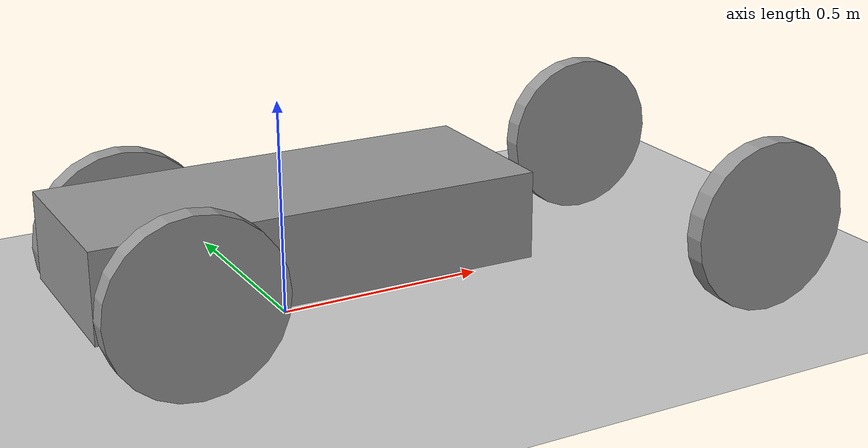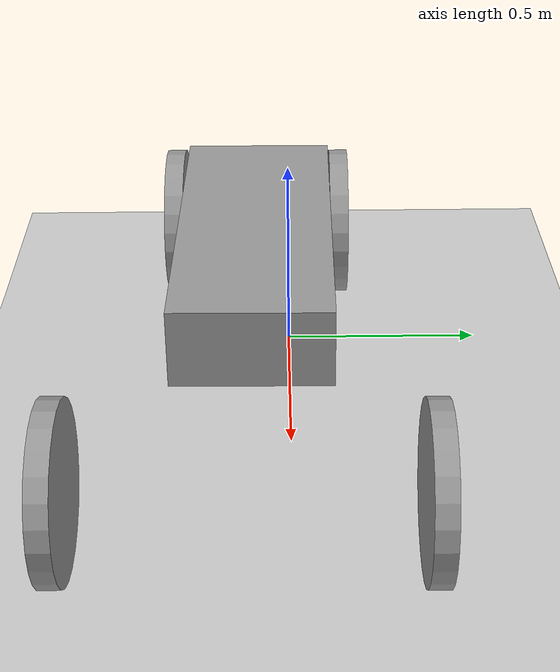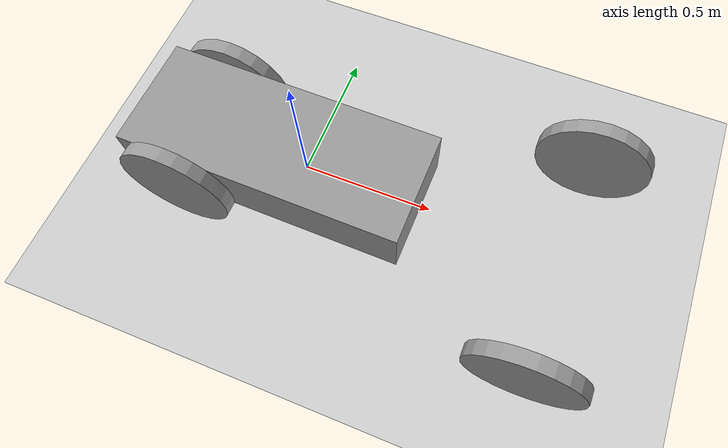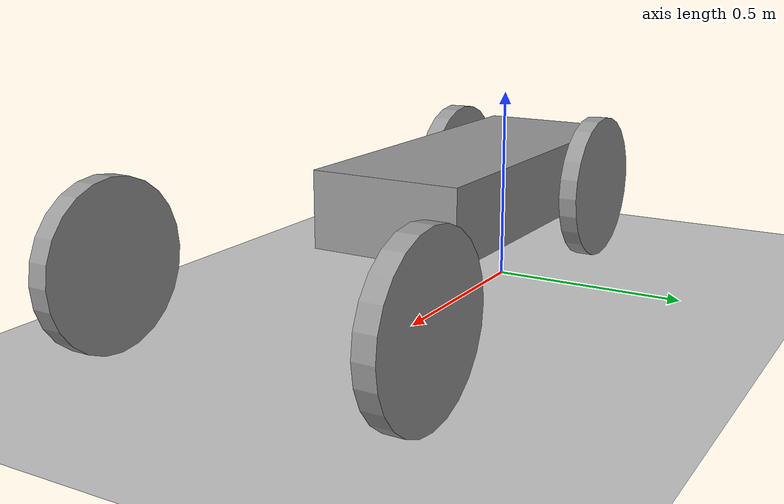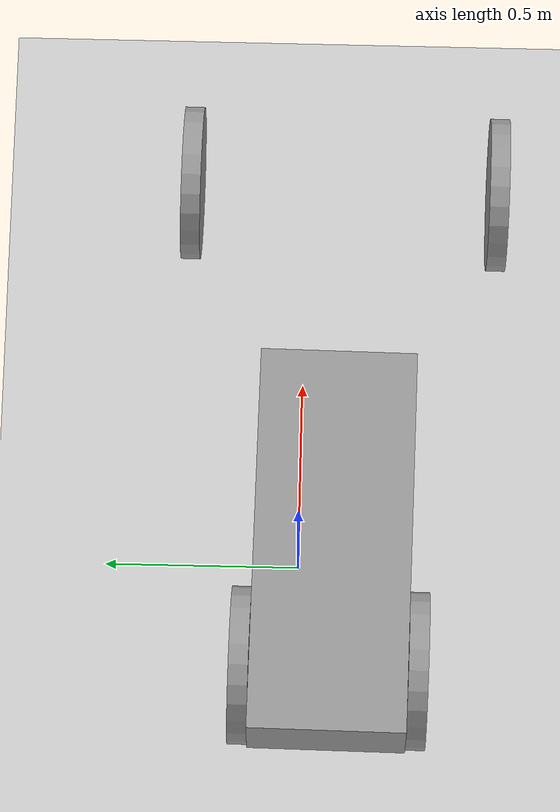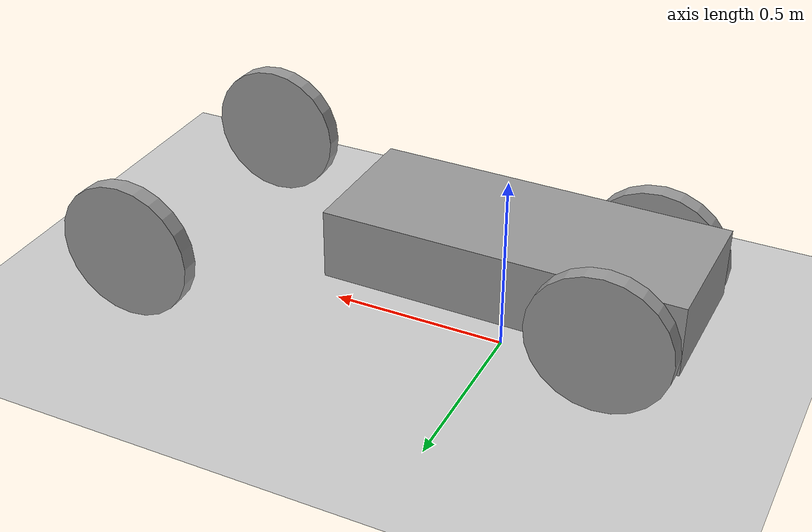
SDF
<sdf version="1.6">
 <world name="default">
  <light name="sun" type="directional">
   <pose>0 0 10 0 -0 0</pose>
   <diffuse>0.8 0.8 0.8 1</diffuse>
   <specular>0.2 0.2 0.2 1</specular>
   <attenuation>
    <range>1000</range>
    <constant>0.9</constant>
    <linear>0.01</linear>
    <quadratic>0.001</quadratic>
   </attenuation>
   <direction>-0.5 0.1 -0.9</direction>
  </light>
  <model name="ground_plane">
   <static>1</static>
   <link name="link">
    <collision name="collision">
     <geometry><plane><normal>0 0 1</normal><size>100 100</size></plane></geometry>
     <surface>
      <contact><collide_bitmask>65535</collide_bitmask></contact>
      <friction><ode><mu>100</mu><mu2>50</mu2></ode></friction>
     </surface>
    </collision>
    <visual name="visual">
     <cast_shadows>0</cast_shadows>
     <geometry><plane><normal>0 0 1</normal><size>100 100</size></plane></geometry>
     <material>
      <script><uri>file://media/materials/scripts/gazebo.material</uri><name>Gazebo/Grey</name></script>
     </material>
    </visual>
   </link>
  </model>
  <gravity>0 0 -9.8</gravity>
  <magnetic_field>6e-06 2.3e-05 -4.2e-05</magnetic_field>
  <atmosphere type="adiabatic"/>
  <physics name="default_physics" default="0" type="ode">
   <max_step_size>0.001</max_step_size>
   <real_time_factor>1</real_time_factor>
   <real_time_update_rate>1000</real_time_update_rate>
  </physics>
  <scene><ambient>0.4 0.4 0.4 1</ambient><background>0.7 0.7 0.7 1</background><shadows>1</shadows></scene>
  <spherical_coordinates>
   <surface_model>EARTH_WGS84</surface_model>
   <latitude_deg>0</latitude_deg>
   <longitude_deg>0</longitude_deg>
   <elevation>0</elevation>
   <heading_deg>0</heading_deg>
  </spherical_coordinates>
  <model name="steer_car">
   <link name="link_0">
    <inertial>
     <mass>0.08</mass>
     <inertia>
      <ixx>0.00133333</ixx>
      <ixy>0</ixy>
      <ixz>0</ixz>
      <iyy>0.00693333</iyy>
      <iyz>0</iyz>
      <izz>0.00773333</izz>
     </inertia>
    </inertial>
    <pose>-0.133642 0.000148 0.304594 0 -0 0</pose>
    <visual name="visual">
     <geometry><box><size>1 0.4 0.2</size></box></geometry>
     <material>
      <lighting>1</lighting>
      <script><uri>file://media/materials/scripts/gazebo.material</uri><name>Gazebo/Grey</name></script>
      <shader type="pixel"><normal_map>__default__</normal_map></shader>
      <ambient>0.3 0.3 0.3 1</ambient>
      <diffuse>0.7 0.7 0.7 1</diffuse>
      <specular>0.01 0.01 0.01 1</specular>
      <emissive>0 0 0 1</emissive>
     </material>
    </visual>
    <collision name="collision">
     <geometry><box><size>1 0.4 0.2</size></box></geometry>
     <surface>
      <friction>
       <ode><mu>1</mu><mu2>1</mu2><fdir1>0 0 0</fdir1><slip1>0</slip1><slip2>0</slip2></ode>
       <torsional>
        <coefficient>1</coefficient>
        <patch_radius>0</patch_radius>
        <surface_radius>0</surface_radius>
        <use_patch_radius>1</use_patch_radius>
        <ode><slip>0</slip></ode>
       </torsional>
      </friction>
      <bounce><restitution_coefficient>0</restitution_coefficient><threshold>1e+06</threshold></bounce>
      <contact>
       <collide_without_contact>0</collide_without_contact>
       <collide_without_contact_bitmask>1</collide_without_contact_bitmask>
       <collide_bitmask>1</collide_bitmask>
       <ode>
        <soft_cfm>0</soft_cfm>
        <soft_erp>0.2</soft_erp>
        <kp>1e+13</kp>
        <kd>1</kd>
        <max_vel>0.01</max_vel>
        <min_depth>0</min_depth>
       </ode>
       <bullet>
        <split_impulse>1</split_impulse>
        <split_impulse_penetration_threshold>-0.01</split_impulse_penetration_threshold>
        <soft_cfm>0</soft_cfm>
        <soft_erp>0.2</soft_erp>
        <kp>1e+13</kp>
        <kd>1</kd>
       </bullet>
      </contact>
     </surface>
    </collision>
   </link>
   <link name="link_1">
    <inertial>
     <mass>1.6e-05</mass>
     <inertia><ixx>0</ixx><ixy>0</ixy><ixz>0</ixz><iyy>0</iyy><iyz>0</iyz><izz>0</izz></inertia>
    </inertial>
    <pose>0.866358 -0.399852 0.254594 0 -0 0</pose>
    <visual name="visual">
     <geometry><cylinder><radius>0.02</radius><length>0.01</length></cylinder></geometry>
     <material>
      <lighting>1</lighting>
      <script><uri>file://media/materials/scripts/gazebo.material</uri><name>Gazebo/Grey</name></script>
      <shader type="pixel"><normal_map>__default__</normal_map></shader>
      <ambient>0.3 0.3 0.3 1</ambient>
      <diffuse>0.7 0.7 0.7 1</diffuse>
      <specular>0.01 0.01 0.01 1</specular>
      <emissive>0 0 0 1</emissive>
     </material>
    </visual>
    <collision name="collision">
     <geometry><cylinder><radius>0.02</radius><length>0.01</length></cylinder></geometry>
     <surface>
      <friction>
       <ode><mu>1</mu><mu2>1</mu2><fdir1>0 0 0</fdir1><slip1>0</slip1><slip2>0</slip2></ode>
       <torsional>
        <coefficient>1</coefficient>
        <patch_radius>0</patch_radius>
        <surface_radius>0</surface_radius>
        <use_patch_radius>1</use_patch_radius>
        <ode><slip>0</slip></ode>
       </torsional>
      </friction>
      <bounce><restitution_coefficient>0</restitution_coefficient><threshold>1e+06</threshold></bounce>
      <contact>
       <collide_without_contact>0</collide_without_contact>
       <collide_without_contact_bitmask>1</collide_without_contact_bitmask>
       <collide_bitmask>1</collide_bitmask>
       <ode>
        <soft_cfm>0</soft_cfm>
        <soft_erp>0.2</soft_erp>
        <kp>1e+13</kp>
        <kd>1</kd>
        <max_vel>0.01</max_vel>
        <min_depth>0</min_depth>
       </ode>
       <bullet>
        <split_impulse>1</split_impulse>
        <split_impulse_penetration_threshold>-0.01</split_impulse_penetration_threshold>
        <soft_cfm>0</soft_cfm>
        <soft_erp>0.2</soft_erp>
        <kp>1e+13</kp>
        <kd>1</kd>
       </bullet>
      </contact>
     </surface>
    </collision>
   </link>
   <link name="link_1_clone">
    <inertial>
     <mass>1.6e-05</mass>
     <inertia><ixx>0</ixx><ixy>0</ixy><ixz>0</ixz><iyy>0</iyy><iyz>0</iyz><izz>0</izz></inertia>
    </inertial>
    <pose>0.866358 0.400148 0.254594 0 -0 0</pose>
    <visual name="visual">
     <geometry><cylinder><radius>0.02</radius><length>0.01</length></cylinder></geometry>
     <material>
      <lighting>1</lighting>
      <script><uri>file://media/materials/scripts/gazebo.material</uri><name>Gazebo/Grey</name></script>
      <shader type="pixel"><normal_map>__default__</normal_map></shader>
      <ambient>0.3 0.3 0.3 1</ambient>
      <diffuse>0.7 0.7 0.7 1</diffuse>
      <specular>0.01 0.01 0.01 1</specular>
      <emissive>0 0 0 1</emissive>
     </material>
    </visual>
    <collision name="collision">
     <geometry><cylinder><radius>0.02</radius><length>0.01</length></cylinder></geometry>
     <surface>
      <friction>
       <ode><mu>1</mu><mu2>1</mu2><fdir1>0 0 0</fdir1><slip1>0</slip1><slip2>0</slip2></ode>
       <torsional>
        <coefficient>1</coefficient>
        <patch_radius>0</patch_radius>
        <surface_radius>0</surface_radius>
        <use_patch_radius>1</use_patch_radius>
        <ode><slip>0</slip></ode>
       </torsional>
      </friction>
      <bounce><restitution_coefficient>0</restitution_coefficient><threshold>1e+06</threshold></bounce>
      <contact>
       <collide_without_contact>0</collide_without_contact>
       <collide_without_contact_bitmask>1</collide_without_contact_bitmask>
       <collide_bitmask>1</collide_bitmask>
       <ode>
        <soft_cfm>0</soft_cfm>
        <soft_erp>0.2</soft_erp>
        <kp>1e+13</kp>
        <kd>1</kd>
        <max_vel>0.01</max_vel>
        <min_depth>0</min_depth>
       </ode>
       <bullet>
        <split_impulse>1</split_impulse>
        <split_impulse_penetration_threshold>-0.01</split_impulse_penetration_threshold>
        <soft_cfm>0</soft_cfm>
        <soft_erp>0.2</soft_erp>
        <kp>1e+13</kp>
        <kd>1</kd>
       </bullet>
      </contact>
     </surface>
    </collision>
   </link>
   <link name="link_2">
    <inertial>
     <mass>0.2</mass>
     <inertia>
      <ixx>0.00204167</ixx>
      <ixy>0</ixy>
      <ixz>0</ixz>
      <iyy>0.00204167</iyy>
      <iyz>0</iyz>
      <izz>0.004</izz>
     </inertia>
    </inertial>
    <pose>0.864364 -0.39886 0.259777 1.5708 -0 0</pose>
    <visual name="visual">
     <geometry><cylinder><radius>0.2</radius><length>0.05</length></cylinder></geometry>
     <material>
      <lighting>1</lighting>
      <script><uri>file://media/materials/scripts/gazebo.material</uri><name>Gazebo/Grey</name></script>
      <shader type="pixel"><normal_map>__default__</normal_map></shader>
      <ambient>0.3 0.3 0.3 1</ambient>
      <diffuse>0.7 0.7 0.7 1</diffuse>
      <specular>0.01 0.01 0.01 1</specular>
      <emissive>0 0 0 1</emissive>
     </material>
    </visual>
    <collision name="collision">
     <geometry><cylinder><radius>0.2</radius><length>0.05</length></cylinder></geometry>
     <surface>
      <friction>
       <ode><mu>1</mu><mu2>1</mu2><fdir1>0 0 0</fdir1><slip1>0</slip1><slip2>0</slip2></ode>
       <torsional>
        <coefficient>1</coefficient>
        <patch_radius>0</patch_radius>
        <surface_radius>0</surface_radius>
        <use_patch_radius>1</use_patch_radius>
        <ode><slip>0</slip></ode>
       </torsional>
      </friction>
      <bounce><restitution_coefficient>0</restitution_coefficient><threshold>1e+06</threshold></bounce>
      <contact>
       <collide_without_contact>0</collide_without_contact>
       <collide_without_contact_bitmask>1</collide_without_contact_bitmask>
       <collide_bitmask>1</collide_bitmask>
       <ode>
        <soft_cfm>0</soft_cfm>
        <soft_erp>0.2</soft_erp>
        <kp>1e+13</kp>
        <kd>1</kd>
        <max_vel>0.01</max_vel>
        <min_depth>0</min_depth>
       </ode>
       <bullet>
        <split_impulse>1</split_impulse>
        <split_impulse_penetration_threshold>-0.01</split_impulse_penetration_threshold>
        <soft_cfm>0</soft_cfm>
        <soft_erp>0.2</soft_erp>
        <kp>1e+13</kp>
        <kd>1</kd>
       </bullet>
      </contact>
     </surface>
    </collision>
   </link>
   <link name="link_2_clone">
    <inertial>
     <mass>0.2</mass>
     <inertia>
      <ixx>0.00204167</ixx>
      <ixy>0</ixy>
      <ixz>0</ixz>
      <iyy>0.00204167</iyy>
      <iyz>0</iyz>
      <izz>0.004</izz>
     </inertia>
    </inertial>
    <pose>0.869897 0.398416 0.259776 1.5708 -0 0</pose>
    <visual name="visual">
     <geometry><cylinder><radius>0.2</radius><length>0.05</length></cylinder></geometry>
     <material>
      <lighting>1</lighting>
      <script><uri>file://media/materials/scripts/gazebo.material</uri><name>Gazebo/Grey</name></script>
      <shader type="pixel"><normal_map>__default__</normal_map></shader>
      <ambient>0.3 0.3 0.3 1</ambient>
      <diffuse>0.7 0.7 0.7 1</diffuse>
      <specular>0.01 0.01 0.01 1</specular>
      <emissive>0 0 0 1</emissive>
     </material>
    </visual>
    <collision name="collision">
     <geometry><cylinder><radius>0.2</radius><length>0.05</length></cylinder></geometry>
     <surface>
      <friction>
       <ode><mu>1</mu><mu2>1</mu2><fdir1>0 0 0</fdir1><slip1>0</slip1><slip2>0</slip2></ode>
       <torsional>
        <coefficient>1</coefficient>
        <patch_radius>0</patch_radius>
        <surface_radius>0</surface_radius>
        <use_patch_radius>1</use_patch_radius>
        <ode><slip>0</slip></ode>
       </torsional>
      </friction>
      <bounce><restitution_coefficient>0</restitution_coefficient><threshold>1e+06</threshold></bounce>
      <contact>
       <collide_without_contact>0</collide_without_contact>
       <collide_without_contact_bitmask>1</collide_without_contact_bitmask>
       <collide_bitmask>1</collide_bitmask>
       <ode>
        <soft_cfm>0</soft_cfm>
        <soft_erp>0.2</soft_erp>
        <kp>1e+13</kp>
        <kd>1</kd>
        <max_vel>0.01</max_vel>
        <min_depth>0</min_depth>
       </ode>
       <bullet>
        <split_impulse>1</split_impulse>
        <split_impulse_penetration_threshold>-0.01</split_impulse_penetration_threshold>
        <soft_cfm>0</soft_cfm>
        <soft_erp>0.2</soft_erp>
        <kp>1e+13</kp>
        <kd>1</kd>
       </bullet>
      </contact>
     </surface>
    </collision>
   </link>
   <link name="link_2_clone_0">
    <inertial>
     <mass>0.008</mass>
     <inertia>
      <ixx>8.167e-05</ixx>
      <ixy>0</ixy>
      <ixz>0</ixz>
      <iyy>8.167e-05</iyy>
      <iyz>0</iyz>
      <izz>0.00016</izz>
     </inertia>
    </inertial>
    <pose>-0.433642 -0.224853 0.259777 1.5708 -0 0</pose>
    <visual name="visual">
     <geometry><cylinder><radius>0.2</radius><length>0.05</length></cylinder></geometry>
     <material>
      <lighting>1</lighting>
      <script><uri>file://media/materials/scripts/gazebo.material</uri><name>Gazebo/Grey</name></script>
      <shader type="pixel"><normal_map>__default__</normal_map></shader>
      <ambient>0.3 0.3 0.3 1</ambient>
      <diffuse>0.7 0.7 0.7 1</diffuse>
      <specular>0.01 0.01 0.01 1</specular>
      <emissive>0 0 0 1</emissive>
     </material>
    </visual>
    <collision name="collision">
     <geometry><cylinder><radius>0.2</radius><length>0.05</length></cylinder></geometry>
     <surface>
      <friction>
       <ode><mu>1</mu><mu2>1</mu2><fdir1>0 0 0</fdir1><slip1>0</slip1><slip2>0</slip2></ode>
       <torsional>
        <coefficient>1</coefficient>
        <patch_radius>0</patch_radius>
        <surface_radius>0</surface_radius>
        <use_patch_radius>1</use_patch_radius>
        <ode><slip>0</slip></ode>
       </torsional>
      </friction>
      <bounce><restitution_coefficient>0</restitution_coefficient><threshold>1e+06</threshold></bounce>
      <contact>
       <collide_without_contact>0</collide_without_contact>
       <collide_without_contact_bitmask>1</collide_without_contact_bitmask>
       <collide_bitmask>1</collide_bitmask>
       <ode>
        <soft_cfm>0</soft_cfm>
        <soft_erp>0.2</soft_erp>
        <kp>1e+13</kp>
        <kd>1</kd>
        <max_vel>0.01</max_vel>
        <min_depth>0</min_depth>
       </ode>
       <bullet>
        <split_impulse>1</split_impulse>
        <split_impulse_penetration_threshold>-0.01</split_impulse_penetration_threshold>
        <soft_cfm>0</soft_cfm>
        <soft_erp>0.2</soft_erp>
        <kp>1e+13</kp>
        <kd>1</kd>
       </bullet>
      </contact>
     </surface>
    </collision>
   </link>
   <link name="link_2_clone_1">
    <inertial>
     <mass>0.008</mass>
     <inertia>
      <ixx>8.167e-05</ixx>
      <ixy>0</ixy>
      <ixz>0</ixz>
      <iyy>8.167e-05</iyy>
      <iyz>0</iyz>
      <izz>0.00016</izz>
     </inertia>
    </inertial>
    <pose>-0.433642 0.225149 0.259777 1.5708 -0 0</pose>
    <visual name="visual">
     <geometry><cylinder><radius>0.2</radius><length>0.05</length></cylinder></geometry>
     <material>
      <lighting>1</lighting>
      <script><uri>file://media/materials/scripts/gazebo.material</uri><name>Gazebo/Grey</name></script>
      <shader type="pixel"><normal_map>__default__</normal_map></shader>
      <ambient>0.3 0.3 0.3 1</ambient>
      <diffuse>0.7 0.7 0.7 1</diffuse>
      <specular>0.01 0.01 0.01 1</specular>
      <emissive>0 0 0 1</emissive>
     </material>
    </visual>
    <collision name="collision">
     <geometry><cylinder><radius>0.2</radius><length>0.05</length></cylinder></geometry>
     <surface>
      <friction>
       <ode><mu>1</mu><mu2>1</mu2><fdir1>0 0 0</fdir1><slip1>0</slip1><slip2>0</slip2></ode>
       <torsional>
        <coefficient>1</coefficient>
        <patch_radius>0</patch_radius>
        <surface_radius>0</surface_radius>
        <use_patch_radius>1</use_patch_radius>
        <ode><slip>0</slip></ode>
       </torsional>
      </friction>
      <bounce><restitution_coefficient>0</restitution_coefficient><threshold>1e+06</threshold></bounce>
      <contact>
       <collide_without_contact>0</collide_without_contact>
       <collide_without_contact_bitmask>1</collide_without_contact_bitmask>
       <collide_bitmask>1</collide_bitmask>
       <ode>
        <soft_cfm>0</soft_cfm>
        <soft_erp>0.2</soft_erp>
        <kp>1e+13</kp>
        <kd>1</kd>
        <max_vel>0.01</max_vel>
        <min_depth>0</min_depth>
       </ode>
       <bullet>
        <split_impulse>1</split_impulse>
        <split_impulse_penetration_threshold>-0.01</split_impulse_penetration_threshold>
        <soft_cfm>0</soft_cfm>
        <soft_erp>0.2</soft_erp>
        <kp>1e+13</kp>
        <kd>1</kd>
       </bullet>
      </contact>
     </surface>
    </collision>
   </link>
   <joint name="link_0_JOINT_0" type="revolute">
    <parent>link_0</parent>
    <child>link_1</child>
    <axis>
     <xyz>0 0 1</xyz>
     <use_parent_model_frame>0</use_parent_model_frame>
     <limit>
      <lower>-1.79769e+308</lower>
      <upper>1.79769e+308</upper>
      <effort>-1</effort>
      <velocity>-1</velocity>
     </limit>
     <dynamics>
      <spring_reference>0</spring_reference>
      <spring_stiffness>0</spring_stiffness>
      <damping>0</damping>
      <friction>0</friction>
     </dynamics>
    </axis>
    <physics>
     <ode><limit><cfm>0</cfm><erp>0.2</erp></limit><suspension><cfm>0</cfm><erp>0.2</erp></suspension></ode>
    </physics>
   </joint>
   <joint name="link_0_JOINT_1" type="revolute">
    <parent>link_0</parent>
    <child>link_1_clone</child>
    <axis>
     <xyz>0 0 1</xyz>
     <use_parent_model_frame>0</use_parent_model_frame>
     <limit>
      <lower>-1.79769e+308</lower>
      <upper>1.79769e+308</upper>
      <effort>-1</effort>
      <velocity>-1</velocity>
     </limit>
     <dynamics>
      <spring_reference>0</spring_reference>
      <spring_stiffness>0</spring_stiffness>
      <damping>0</damping>
      <friction>0</friction>
     </dynamics>
    </axis>
    <physics>
     <ode><limit><cfm>0</cfm><erp>0.2</erp></limit><suspension><cfm>0</cfm><erp>0.2</erp></suspension></ode>
    </physics>
   </joint>
   <joint name="link_0_JOINT_2" type="revolute">
    <parent>link_0</parent>
    <child>link_2_clone_0</child>
    <axis>
     <xyz>0 0 1</xyz>
     <use_parent_model_frame>0</use_parent_model_frame>
     <limit>
      <lower>-1.79769e+308</lower>
      <upper>1.79769e+308</upper>
      <effort>-1</effort>
      <velocity>-1</velocity>
     </limit>
     <dynamics>
      <spring_reference>0</spring_reference>
      <spring_stiffness>0</spring_stiffness>
      <damping>0</damping>
      <friction>0</friction>
     </dynamics>
    </axis>
    <physics>
     <ode><limit><cfm>0</cfm><erp>0.2</erp></limit><suspension><cfm>0</cfm><erp>0.2</erp></suspension></ode>
    </physics>
   </joint>
   <joint name="link_0_JOINT_3" type="revolute">
    <parent>link_0</parent>
    <child>link_2_clone_1</child>
    <axis>
     <xyz>0 0 1</xyz>
     <use_parent_model_frame>0</use_parent_model_frame>
     <limit>
      <lower>-1.79769e+308</lower>
      <upper>1.79769e+308</upper>
      <effort>-1</effort>
      <velocity>-1</velocity>
     </limit>
     <dynamics>
      <spring_reference>0</spring_reference>
      <spring_stiffness>0</spring_stiffness>
      <damping>0</damping>
      <friction>0</friction>
     </dynamics>
    </axis>
    <physics>
     <ode><limit><cfm>0</cfm><erp>0.2</erp></limit><suspension><cfm>0</cfm><erp>0.2</erp></suspension></ode>
    </physics>
   </joint>
   <joint name="link_1_JOINT_0" type="revolute">
    <parent>link_1</parent>
    <child>link_2</child>
    <axis>
     <xyz>0 0 -1</xyz>
     <use_parent_model_frame>0</use_parent_model_frame>
     <limit>
      <lower>-1.79769e+308</lower>
      <upper>1.79769e+308</upper>
      <effort>-1</effort>
      <velocity>-1</velocity>
     </limit>
     <dynamics>
      <spring_reference>0</spring_reference>
      <spring_stiffness>0</spring_stiffness>
      <damping>0</damping>
      <friction>0</friction>
     </dynamics>
    </axis>
    <physics>
     <ode><limit><cfm>0</cfm><erp>0.2</erp></limit><suspension><cfm>0</cfm><erp>0.2</erp></suspension></ode>
    </physics>
   </joint>
   <joint name="link_1_clone_JOINT_1" type="revolute">
    <parent>link_1_clone</parent>
    <child>link_2_clone</child>
    <axis>
     <xyz>0 0 -1</xyz>
     <use_parent_model_frame>0</use_parent_model_frame>
     <limit>
      <lower>-1.79769e+308</lower>
      <upper>1.79769e+308</upper>
      <effort>-1</effort>
      <velocity>-1</velocity>
     </limit>
     <dynamics>
      <spring_reference>0</spring_reference>
      <spring_stiffness>0</spring_stiffness>
      <damping>0</damping>
      <friction>0</friction>
     </dynamics>
    </axis>
    <physics>
     <ode><limit><cfm>0</cfm><erp>0.2</erp></limit><suspension><cfm>0</cfm><erp>0.2</erp></suspension></ode>
    </physics>
   </joint>
   <static>0</static>
   <plugin name="steer_drive" filename="libgazebo_ros_steer_drive.so">
    <ros><namespace>/steer</namespace></ros>
    <steer_type>0</steer_type>
    <joint_status>0</joint_status>
    <steer_status>0</steer_status>
    <left_joint>link_1_JOINT_0</left_joint>
    <right_joint>link_1_clone_JOINT_1</right_joint>
    <left_steer>link_0_JOINT_0</left_steer>
    <right_steer>link_0_JOINT_1</right_steer>
    <wheel_separation>0.8</wheel_separation>
    <wheel_diameter>0.4</wheel_diameter>
    <max_wheel_torque>20.0</max_wheel_torque>
    <max_wheel_acceleration>5.0</max_wheel_acceleration>
    <max_steer_acceleration>5.0</max_steer_acceleration>
    <max_steer_torque>20.0</max_steer_torque>
    <max_steer_vel>0.5</max_steer_vel>
    <odometry_frame>odom_demo</odometry_frame>
    <publish_odom>1</publish_odom>
    <publish_odom_tf>1</publish_odom_tf>
    <publish_wheel_tf>1</publish_wheel_tf>
   </plugin>
   <pose>0.112892 -0.088763 -0.059829 1e-06 0.00012 -0.012769</pose>
  </model>
 </world>
</sdf>
